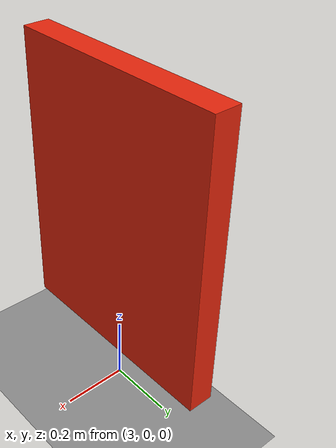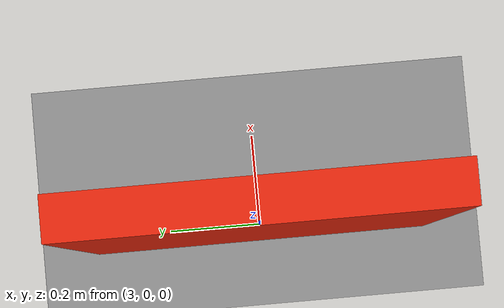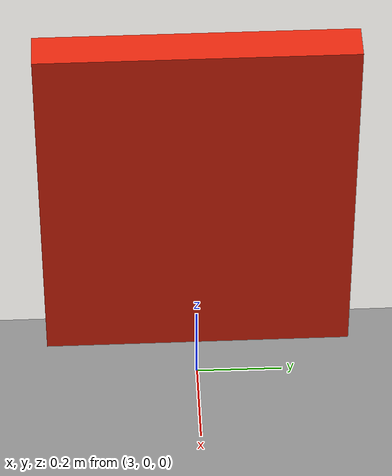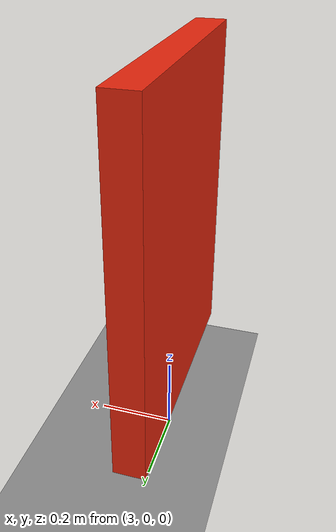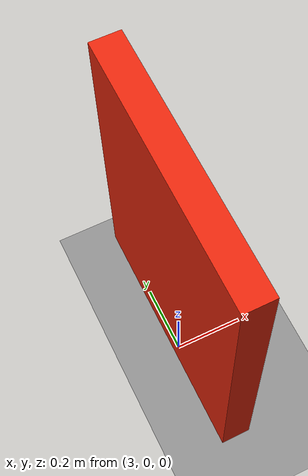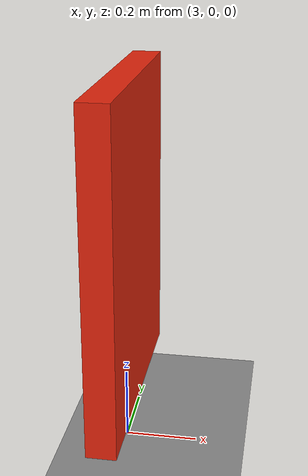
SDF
<?xml version="1.0"?>
<sdf version="1.9">
  <world name="camera_smoke">
    <physics name="camera_smoke_physics" type="ignored">
      <max_step_size>0.005</max_step_size>
      <real_time_factor>1.0</real_time_factor>
    </physics>

    <plugin filename="gz-sim-physics-system" name="gz::sim::systems::Physics"/>
    <plugin filename="gz-sim-user-commands-system" name="gz::sim::systems::UserCommands"/>
    <plugin filename="gz-sim-scene-broadcaster-system" name="gz::sim::systems::SceneBroadcaster"/>
    <plugin filename="gz-sim-sensors-system" name="gz::sim::systems::Sensors">
      <render_engine>ogre2</render_engine>
    </plugin>

    <gravity>0 0 -9.81</gravity>
    <scene>
      <ambient>0.4 0.4 0.4 1</ambient>
      <background>0.15 0.15 0.18 1</background>
      <shadows>false</shadows>
    </scene>

    <light name="sun" type="directional">
      <cast_shadows>false</cast_shadows>
      <pose>0 0 10 0 0 0</pose>
      <diffuse>0.8 0.8 0.8 1</diffuse>
      <specular>0.1 0.1 0.1 1</specular>
      <direction>-0.5 0.1 -0.9</direction>
    </light>

    <model name="ground_plane">
      <static>true</static>
      <link name="link">
        <collision name="collision">
          <geometry><plane><normal>0 0 1</normal><size>20 20</size></plane></geometry>
        </collision>
        <visual name="visual">
          <geometry><plane><normal>0 0 1</normal><size>20 20</size></plane></geometry>
          <material><ambient>0.55 0.55 0.55 1</ambient><diffuse>0.55 0.55 0.55 1</diffuse></material>
        </visual>
      </link>
    </model>

    <model name="camera_rig">
      <static>true</static>
      <pose>0 0 0.65 0 0 0</pose>
      <link name="camera_link">
        <sensor name="front_camera" type="camera">
          <topic>/smoke/camera/image</topic>
          <update_rate>15</update_rate>
          <always_on>true</always_on>
          <visualize>false</visualize>
          <camera>
            <horizontal_fov>1.2217304764</horizontal_fov>
            <image>
              <width>640</width>
              <height>480</height>
              <format>R8G8B8</format>
            </image>
            <clip><near>0.1</near><far>20.0</far></clip>
          </camera>
        </sensor>
      </link>
    </model>

    <model name="visual_target">
      <static>true</static>
      <pose>3 0 0.6 0 0 0</pose>
      <link name="target_link">
        <collision name="collision">
          <geometry><box><size>0.08 0.7 0.9</size></box></geometry>
        </collision>
        <visual name="visual">
          <geometry><box><size>0.08 0.7 0.9</size></box></geometry>
          <material><ambient>0.9 0.15 0.05 1</ambient><diffuse>0.9 0.15 0.05 1</diffuse></material>
        </visual>
      </link>
    </model>
  </world>
</sdf>
